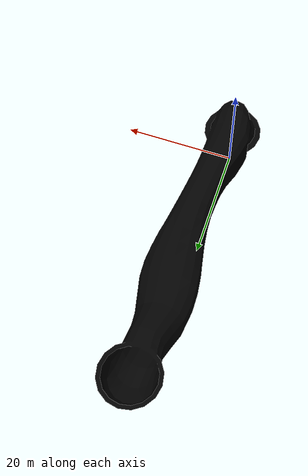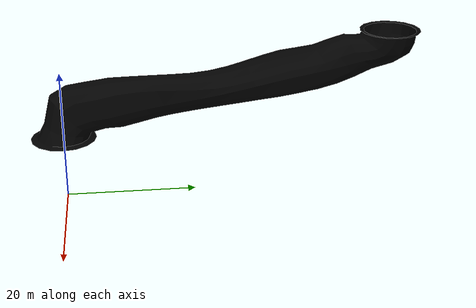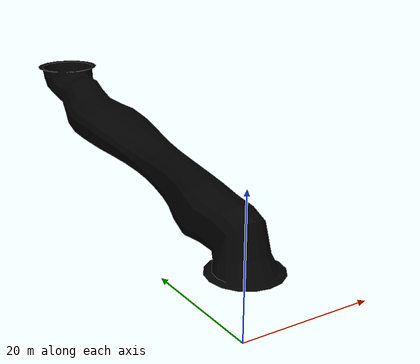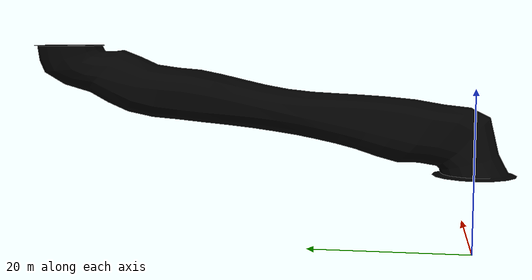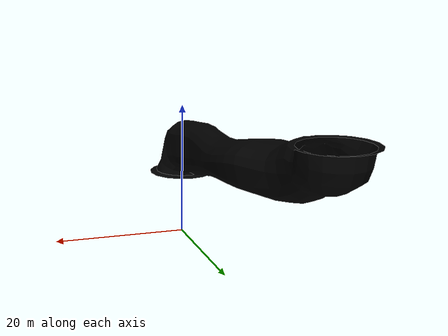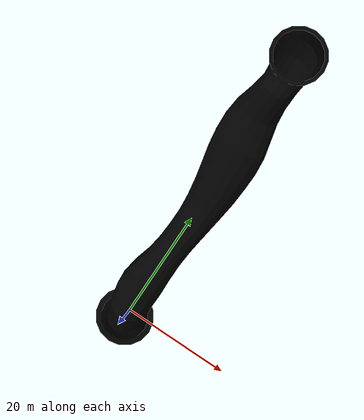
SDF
<sdf version="1.6">
  <model name="Cave Vertical Shaft Cantilevered Type A">
    <static>true</static>
    <link name="base_link">
      <collision name="collision">
        <pose>0 0 0 0 0 0</pose>
        <geometry>
          <mesh>
            <uri>model://Cave Vertical Shaft Cantilevered Type A/meshes/verticalshaftcantilevered.dae</uri>
            <scale>1.0 1.0 1.0</scale>
          </mesh>
        </geometry>
      </collision>
      <visual name="Cave Vertical Shaft Cantilevered Type A_visual">
        <geometry>
          <mesh>
            <uri>model://Cave Vertical Shaft Cantilevered Type A/meshes/verticalshaftcantilevered.dae</uri>
          </mesh>
        </geometry>
        <material>
          <diffuse>0 0 0 1</diffuse>
          <specular>0 0 0 1</specular>
          <pbr>
            <metal>
              <albedo_map>model://Cave Vertical Shaft Cantilevered Type A/materials/textures/CaveWall_Albedo.png</albedo_map>
              <normal_map>model://Cave Vertical Shaft Cantilevered Type A/materials/textures/CaveWall_Normal.png</normal_map>
              <roughness_map>model://Cave Vertical Shaft Cantilevered Type A/materials/textures/CaveWall_Roughness.png</roughness_map>
            </metal>
          </pbr>

          <script>
            <uri>model://Cave Vertical Shaft Cantilevered Type A/materials/scripts/</uri>
            <uri>model://Cave Vertical Shaft Cantilevered Type A/materials/textures/</uri>
            <name>CaveTile/CaveWall_Diffuse</name>
          </script>
        </material>
      </visual>
    </link>
  </model>
</sdf>
